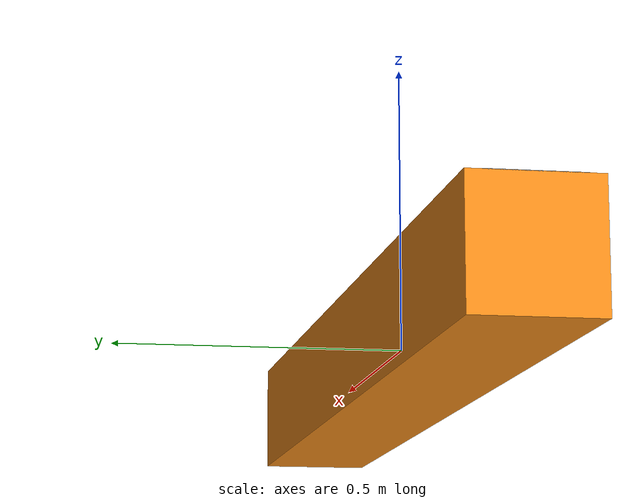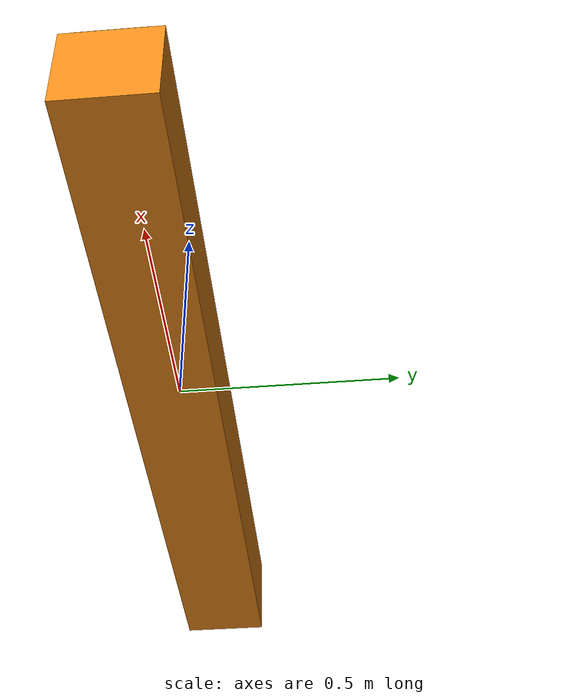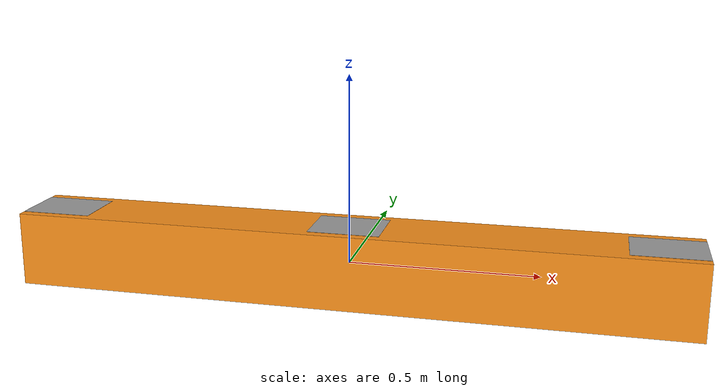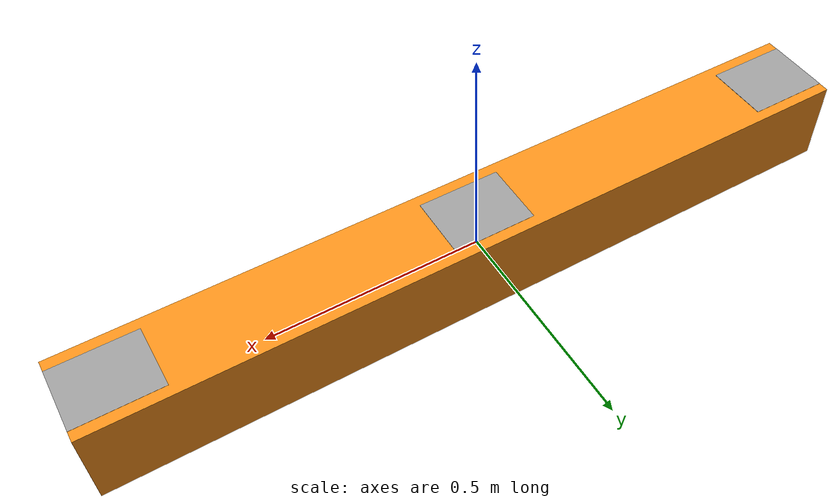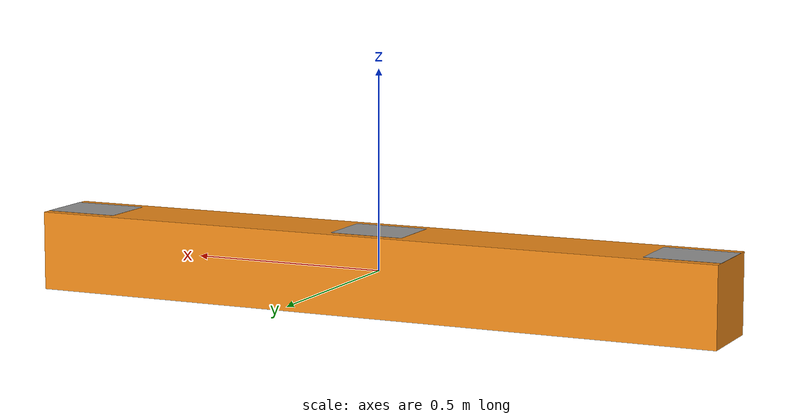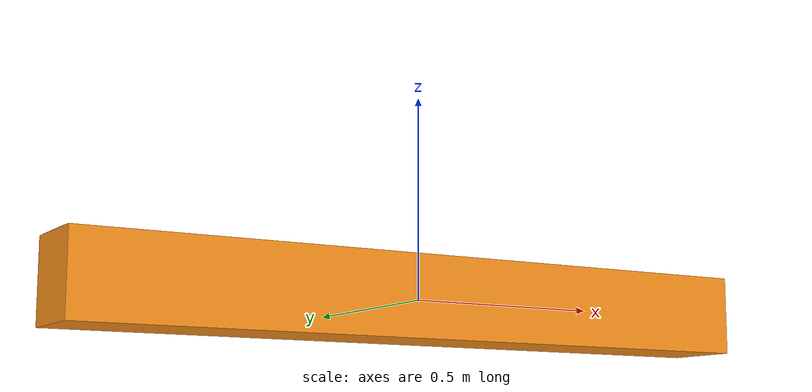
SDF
<sdf version='1.6'>
  <model name='brick_orange'>
    <link name='base_link'>
      <pose frame=''>0 0 0 0 -0 0</pose>
      <inertial>
        <pose frame=''>0 0 0 0 -0 0</pose>
        <mass>0.01</mass>
        <inertia>
          <ixx>0.001</ixx>
          <ixy>0</ixy>
          <ixz>0</ixz>
          <iyy>0.01</iyy>
          <iyz>0</iyz>
          <izz>0.01</izz>
        </inertia>
      </inertial>
      <collision name='base_link_collision'>
        <pose frame=''>0 0 0 0 -0 0</pose>
        <geometry>
          <box>
            <size>1.8 0.2 0.2</size>
          </box>
        </geometry>
        <surface>
          <contact>
            <ode/>
          </contact>
          <friction>
            <ode/>
          </friction>
        </surface>
      </collision>
      <collision name='base_link_fixed_joint_lump__magnet_patch_collision_0'>
        <pose frame=''>-0.805 0 0.1 0 -0 0</pose>
        <geometry>
          <box>
            <size>0.2 0.15 0.0005</size>
          </box>
        </geometry>
        <surface>
          <contact>
            <ode/>
          </contact>
          <friction>
            <ode/>
          </friction>
        </surface>
      </collision>
      <collision name='base_link_fixed_joint_lump__magnet_patch_collision_1'>
        <pose frame=''>0 0 0.1 0 -0 0</pose>
        <geometry>
          <box>
            <size>0.15 0.15 0.0005</size>
          </box>
        </geometry>
        <surface>
          <contact>
            <ode/>
          </contact>
          <friction>
            <ode/>
          </friction>
        </surface>
      </collision>
      <collision name='base_link_fixed_joint_lump__magnet_patch_collision_2'>
        <pose frame=''>0.805 0 0.1 0 -0 0</pose>
        <geometry>
          <box>
            <size>0.15 0.15 0.0005</size>
          </box>
        </geometry>
        <surface>
          <contact>
            <ode/>
          </contact>
          <friction>
            <ode/>
          </friction>
        </surface>
      </collision>
      <visual name='base_link_visual'>
        <pose frame=''>0 0 0 0 -0 0</pose>
        <geometry>
          <box>
            <size>1.8 0.2 0.2</size>
          </box>
        </geometry>
        <material>
          <script>
            <name>Gazebo/Orange</name>
            <uri>file://media/materials/scripts/gazebo.material</uri>
          </script>
        </material>
      </visual>
      <visual name='base_link_fixed_joint_lump__magnet_patch_visual_0'>
        <pose frame=''>-0.805 0 0.1 0 -0 0</pose>
        <geometry>
          <box>
            <size>0.19 0.15 0.001</size>
          </box>
        </geometry>
        <material>
          <script>
            <name>Gazebo/Gray</name>
            <uri>file://media/materials/scripts/gazebo.material</uri>
          </script>
        </material>
      </visual>
      <visual name='base_link_fixed_joint_lump__magnet_patch_visual_1'>
        <pose frame=''>0 0 0.1 0 -0 0</pose>
        <geometry>
          <box>
            <size>0.19 0.15 0.001</size>
          </box>
        </geometry>
        <material>
          <script>
            <name>Gazebo/Gray</name>
            <uri>file://media/materials/scripts/gazebo.material</uri>
          </script>
        </material>
      </visual>
      <visual name='base_link_fixed_joint_lump__magnet_patch_visual_2'>
        <pose frame=''>0.805 0 0.1 0 -0 0</pose>
        <geometry>
          <box>
            <size>0.19 0.15 0.001</size>
          </box>
        </geometry>
        <material>
          <script>
            <name>Gazebo/Gray</name>
            <uri>file://media/materials/scripts/gazebo.material</uri>
          </script>
        </material>
      </visual>
      <velocity_decay/>
      <gravity>1</gravity>
      <velocity_decay/>
    </link>
    <static>0</static>
    <plugin name='dipole_magnet' filename='libstorm_gazebo_dipole_magnet.so'>
      <dipole_moment>0 0 1</dipole_moment>
      <shouldPublish>1</shouldPublish>
      <topicNs>magnet</topicNs>
      <updateRate>100</updateRate>
      <gain>1.0</gain>
      <bodyName>base_link</bodyName>
      <xyzOffset>0 0 -0.1</xyzOffset>
      <rpyOffset>0 -0 0</rpyOffset>
    </plugin>
    <plugin name='dipole_magnet' filename='libstorm_gazebo_dipole_magnet.so'>
      <dipole_moment>0 0 1</dipole_moment>
      <shouldPublish>1</shouldPublish>
      <topicNs>magnet</topicNs>
      <updateRate>100</updateRate>
      <gain>1.0</gain>
      <bodyName>base_link</bodyName>
      <xyzOffset>-0.805 0 -0.1</xyzOffset>
      <rpyOffset>0 -0 0</rpyOffset>
    </plugin><plugin name='dipole_magnet' filename='libstorm_gazebo_dipole_magnet.so'>
      <dipole_moment>0 0 1</dipole_moment>
      <shouldPublish>1</shouldPublish>
      <topicNs>magnet</topicNs>
      <updateRate>100</updateRate>
      <gain>1.0</gain>
      <bodyName>base_link</bodyName>
      <xyzOffset>0.805 0 -0.1</xyzOffset>
      <rpyOffset>0 -0 0</rpyOffset>
    </plugin>

  </model>
</sdf>
